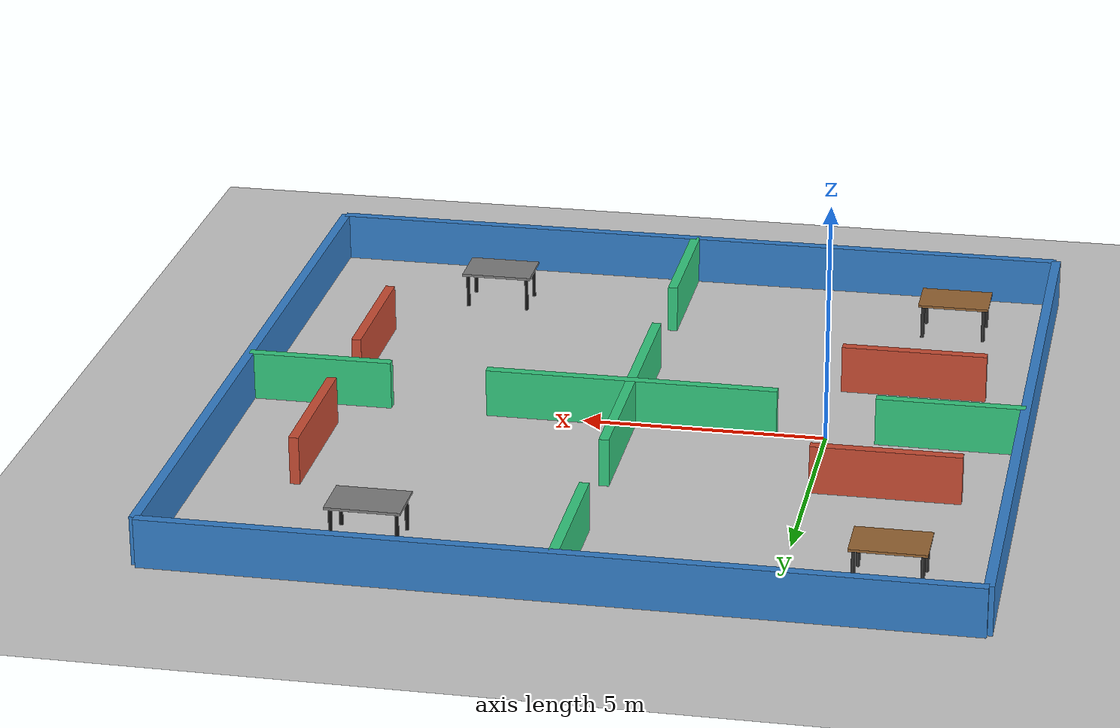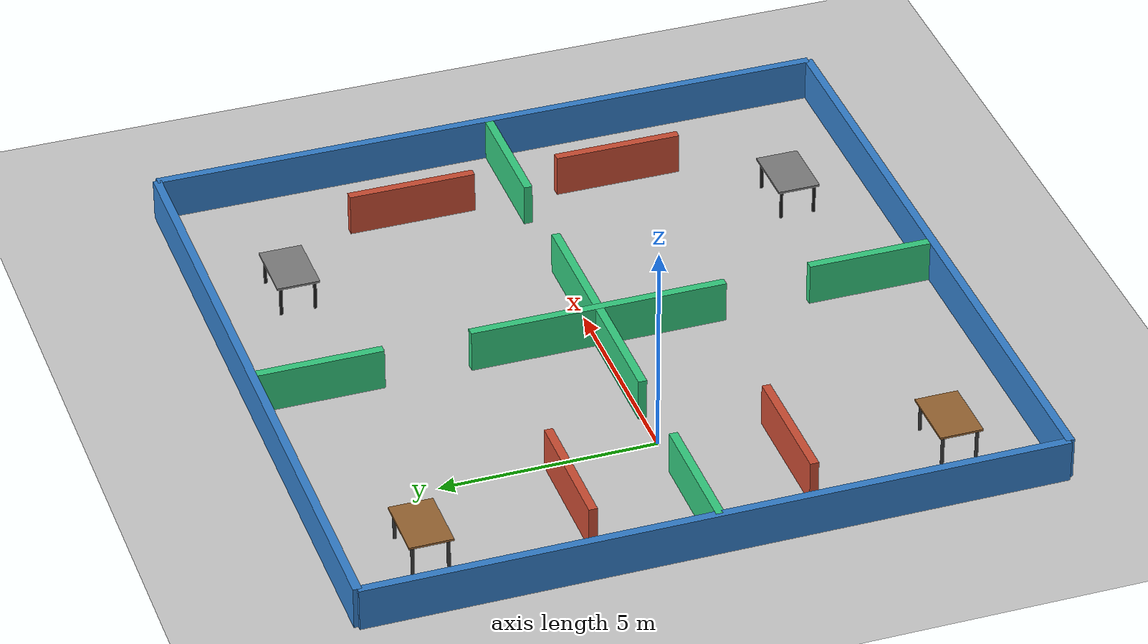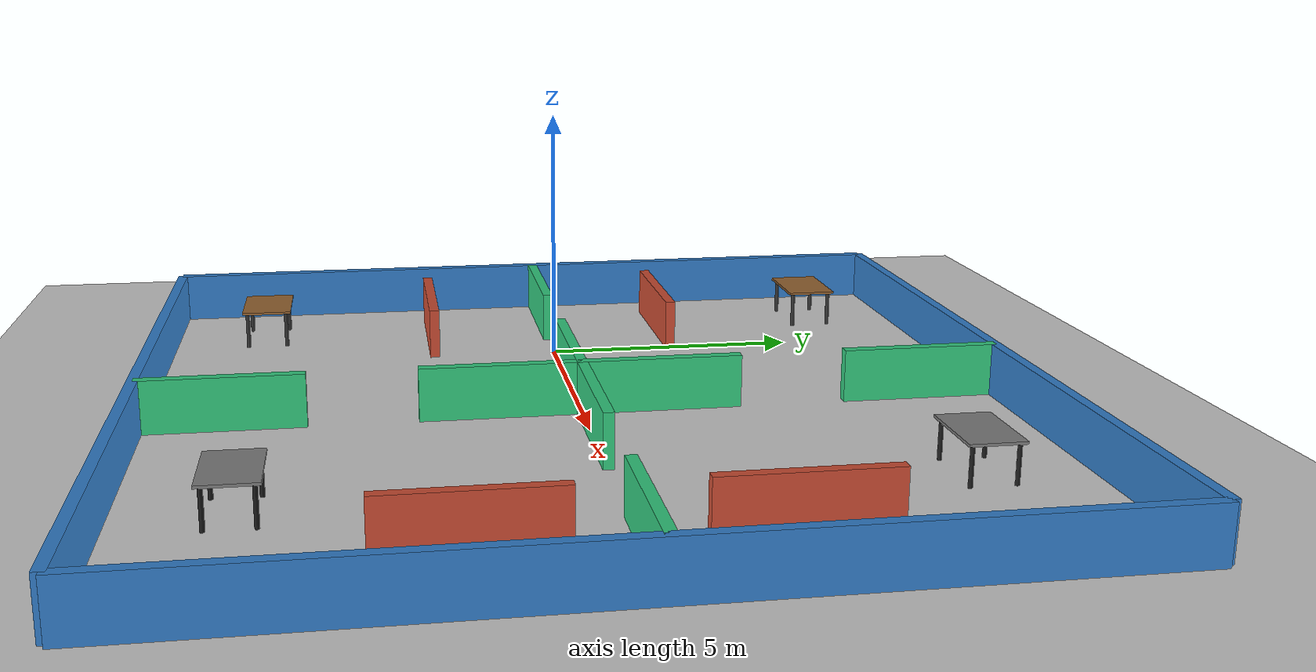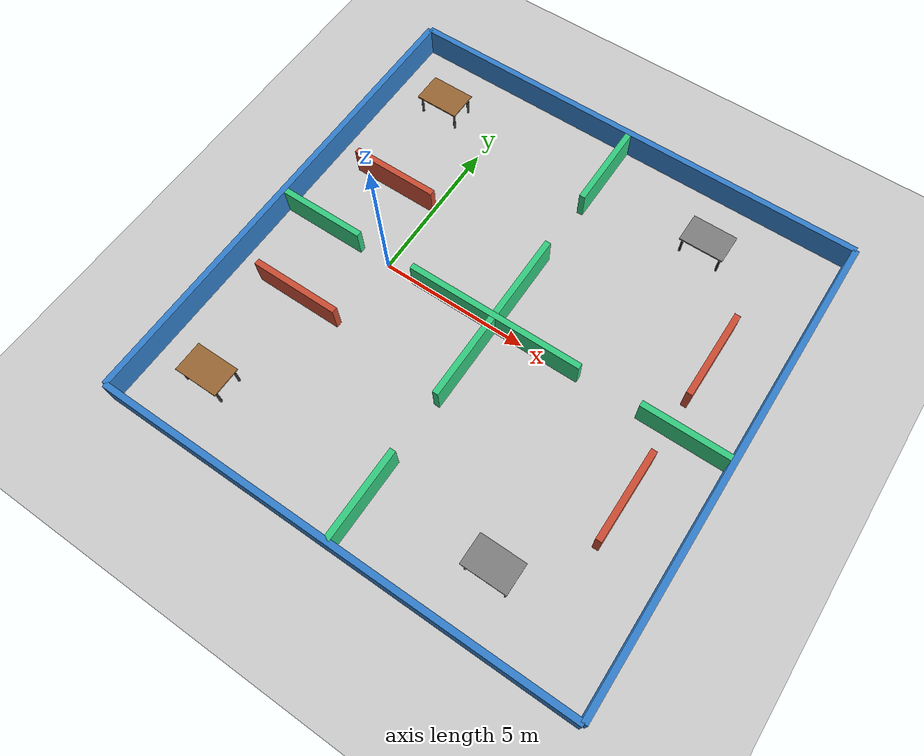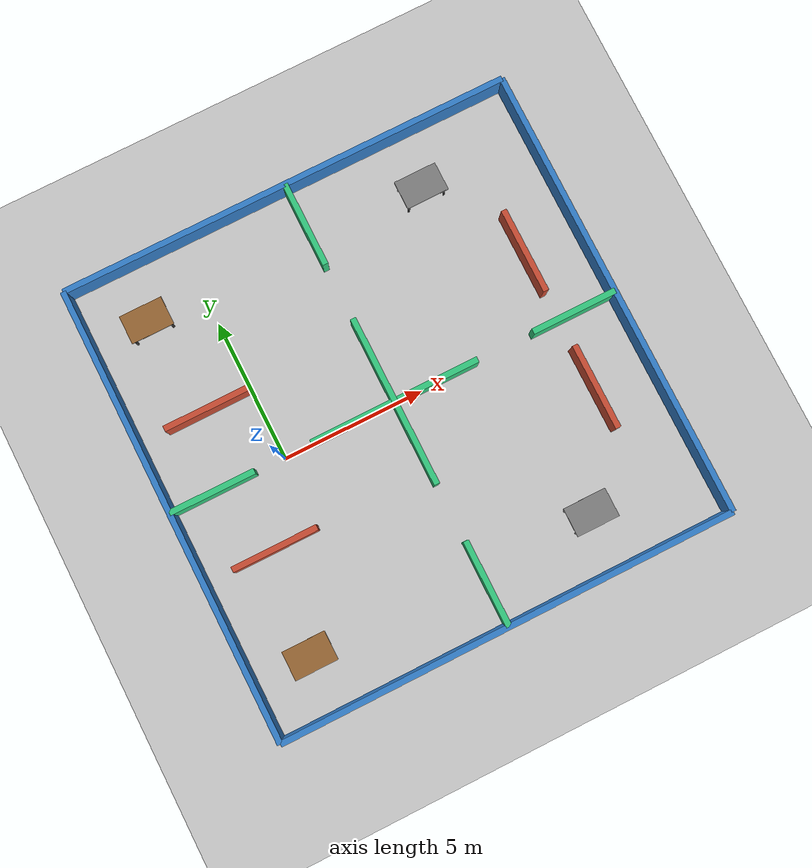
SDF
<?xml version='1.0' encoding='utf-8'?>
<sdf version='1.9'>
  <world name='four_rooms_world'>

    <physics name='1ms' type='ignored'>
      <max_step_size>0.001</max_step_size>
      <real_time_factor>1</real_time_factor>
      <real_time_update_rate>1000</real_time_update_rate>
    </physics>
    <plugin name='gz::sim::systems::Physics' filename='ignition-gazebo-physics-system'/>
    <plugin name='gz::sim::systems::UserCommands' filename='ignition-gazebo-user-commands-system'/>
    <plugin name='gz::sim::systems::SceneBroadcaster' filename='ignition-gazebo-scene-broadcaster-system'/>
    <plugin name='gz::sim::systems::Contact' filename='ignition-gazebo-contact-system'/>
    <gravity>0 0 -9.8</gravity>
    <magnetic_field>6e-06 2.3e-05 -4.2e-05</magnetic_field>
    <atmosphere type='adiabatic'/>

    <scene>
      <ambient>0.4 0.4 0.4 1</ambient>
      <background>0.7 0.7 0.7 1</background>
      <shadows>true</shadows>
    </scene>

    <light name='sun' type='directional'>
      <pose>4 0 10 0 0 0</pose>
      <cast_shadows>true</cast_shadows>
      <intensity>1</intensity>
      <direction>-0.5 0.1 -0.9</direction>
      <diffuse>0.8 0.8 0.8 1</diffuse>
      <specular>0.2 0.2 0.2 1</specular>
      <attenuation>
        <range>1000</range>
        <linear>0.01</linear>
        <constant>0.9</constant>
        <quadratic>0.001</quadratic>
      </attenuation>
    </light>

    <model name='ground_plane'>
      <static>true</static>
      <link name='link'>
        <collision name='collision'>
          <geometry><plane><normal>0 0 1</normal><size>100 100</size></plane></geometry>
        </collision>
        <visual name='visual'>
          <geometry><plane><normal>0 0 1</normal><size>100 100</size></plane></geometry>
          <material>
            <ambient>0.8 0.8 0.8 1</ambient>
            <diffuse>0.8 0.8 0.8 1</diffuse>
            <specular>0.8 0.8 0.8 1</specular>
          </material>
        </visual>
      </link>
    </model>

    <model name='four_rooms'>
      <static>true</static>
      <pose>0 0 0 0 0 0</pose>
      <link name='maze_walls'>

        <collision name='wall_n_col'><pose>4 8 0.5 0 0 0</pose><geometry><box><size>16 0.2 1</size></box></geometry></collision>
        <visual name='wall_n_vis'><pose>4 8 0.5 0 0 0</pose><geometry><box><size>16 0.2 1</size></box></geometry><material><ambient>0.2 0.5 0.8 1</ambient><diffuse>0.2 0.5 0.8 1</diffuse></material></visual>

        <collision name='wall_s_col'><pose>4 -8 0.5 0 0 0</pose><geometry><box><size>16 0.2 1</size></box></geometry></collision>
        <visual name='wall_s_vis'><pose>4 -8 0.5 0 0 0</pose><geometry><box><size>16 0.2 1</size></box></geometry><material><ambient>0.2 0.5 0.8 1</ambient><diffuse>0.2 0.5 0.8 1</diffuse></material></visual>

        <collision name='wall_w_col'><pose>-4 0 0.5 0 0 0</pose><geometry><box><size>0.2 16 1</size></box></geometry></collision>
        <visual name='wall_w_vis'><pose>-4 0 0.5 0 0 0</pose><geometry><box><size>0.2 16 1</size></box></geometry><material><ambient>0.2 0.5 0.8 1</ambient><diffuse>0.2 0.5 0.8 1</diffuse></material></visual>

        <collision name='wall_e_col'><pose>12 0 0.5 0 0 0</pose><geometry><box><size>0.2 16 1</size></box></geometry></collision>
        <visual name='wall_e_vis'><pose>12 0 0.5 0 0 0</pose><geometry><box><size>0.2 16 1</size></box></geometry><material><ambient>0.2 0.5 0.8 1</ambient><diffuse>0.2 0.5 0.8 1</diffuse></material></visual>

        <collision name='wall_v1_col'><pose>4 6.5 0.5 0 0 0</pose><geometry><box><size>0.2 3 1</size></box></geometry></collision>
        <visual name='wall_v1_vis'><pose>4 6.5 0.5 0 0 0</pose><geometry><box><size>0.2 3 1</size></box></geometry><material><ambient>0.2 0.8 0.5 1</ambient><diffuse>0.2 0.8 0.5 1</diffuse></material></visual>

        <collision name='wall_v2_col'><pose>4 0 0.5 0 0 0</pose><geometry><box><size>0.2 6 1</size></box></geometry></collision>
        <visual name='wall_v2_vis'><pose>4 0 0.5 0 0 0</pose><geometry><box><size>0.2 6 1</size></box></geometry><material><ambient>0.2 0.8 0.5 1</ambient><diffuse>0.2 0.8 0.5 1</diffuse></material></visual>

        <collision name='wall_v3_col'><pose>4 -6.5 0.5 0 0 0</pose><geometry><box><size>0.2 3 1</size></box></geometry></collision>
        <visual name='wall_v3_vis'><pose>4 -6.5 0.5 0 0 0</pose><geometry><box><size>0.2 3 1</size></box></geometry><material><ambient>0.2 0.8 0.5 1</ambient><diffuse>0.2 0.8 0.5 1</diffuse></material></visual>

        <collision name='wall_h1_col'><pose>-2.5 0 0.5 0 0 0</pose><geometry><box><size>3 0.2 1</size></box></geometry></collision>
        <visual name='wall_h1_vis'><pose>-2.5 0 0.5 0 0 0</pose><geometry><box><size>3 0.2 1</size></box></geometry><material><ambient>0.2 0.8 0.5 1</ambient><diffuse>0.2 0.8 0.5 1</diffuse></material></visual>

        <collision name='wall_h2_col'><pose>4 0 0.5 0 0 0</pose><geometry><box><size>6 0.2 1</size></box></geometry></collision>
        <visual name='wall_h2_vis'><pose>4 0 0.5 0 0 0</pose><geometry><box><size>6 0.2 1</size></box></geometry><material><ambient>0.2 0.8 0.5 1</ambient><diffuse>0.2 0.8 0.5 1</diffuse></material></visual>

        <collision name='wall_h3_col'><pose>10.5 0 0.5 0 0 0</pose><geometry><box><size>3 0.2 1</size></box></geometry></collision>
        <visual name='wall_h3_vis'><pose>10.5 0 0.5 0 0 0</pose><geometry><box><size>3 0.2 1</size></box></geometry><material><ambient>0.2 0.8 0.5 1</ambient><diffuse>0.2 0.8 0.5 1</diffuse></material></visual>

        <collision name='obs_1_col'><pose>-1.5 2.5 0.5 0 0 0</pose><geometry><box><size>3 0.2 1</size></box></geometry></collision>
        <visual name='obs_1_vis'><pose>-1.5 2.5 0.5 0 0 0</pose><geometry><box><size>3 0.2 1</size></box></geometry><material><ambient>0.8 0.3 0.2 1</ambient><diffuse>0.8 0.3 0.2 1</diffuse></material></visual>

        <collision name='obs_2_col'><pose>10 2.5 0.5 0 0 0</pose><geometry><box><size>0.2 3 1</size></box></geometry></collision>
        <visual name='obs_2_vis'><pose>10 2.5 0.5 0 0 0</pose><geometry><box><size>0.2 3 1</size></box></geometry><material><ambient>0.8 0.3 0.2 1</ambient><diffuse>0.8 0.3 0.2 1</diffuse></material></visual>

        <collision name='obs_3_col'><pose>-1.5 -2.5 0.5 0 0 0</pose><geometry><box><size>3 0.2 1</size></box></geometry></collision>
        <visual name='obs_3_vis'><pose>-1.5 -2.5 0.5 0 0 0</pose><geometry><box><size>3 0.2 1</size></box></geometry><material><ambient>0.8 0.3 0.2 1</ambient><diffuse>0.8 0.3 0.2 1</diffuse></material></visual>

        <collision name='obs_4_col'><pose>10 -2.5 0.5 0 0 0</pose><geometry><box><size>0.2 3 1</size></box></geometry></collision>
        <visual name='obs_4_vis'><pose>10 -2.5 0.5 0 0 0</pose><geometry><box><size>0.2 3 1</size></box></geometry><material><ambient>0.8 0.3 0.2 1</ambient><diffuse>0.8 0.3 0.2 1</diffuse></material></visual>

      </link>
    </model>

    <model name='table_1'>
      <static>true</static><pose>-2 6 0 0 0 0</pose>
      <link name='table_parts'>
        <collision name='top'><pose>0 0 0.75 0 0 0</pose><geometry><box><size>1.5 1.0 0.05</size></box></geometry></collision>
        <visual name='top'><pose>0 0 0.75 0 0 0</pose><geometry><box><size>1.5 1.0 0.05</size></box></geometry><material><ambient>0.6 0.4 0.2 1</ambient></material></visual>
        <visual name='l1'><pose>0.65 0.4 0.375 0 0 0</pose><geometry><cylinder><radius>0.04</radius><length>0.75</length></cylinder></geometry><material><ambient>0.2 0.2 0.2 1</ambient></material></visual>
        <visual name='l2'><pose>-0.65 0.4 0.375 0 0 0</pose><geometry><cylinder><radius>0.04</radius><length>0.75</length></cylinder></geometry><material><ambient>0.2 0.2 0.2 1</ambient></material></visual>
        <visual name='l3'><pose>0.65 -0.4 0.375 0 0 0</pose><geometry><cylinder><radius>0.04</radius><length>0.75</length></cylinder></geometry><material><ambient>0.2 0.2 0.2 1</ambient></material></visual>
        <visual name='l4'><pose>-0.65 -0.4 0.375 0 0 0</pose><geometry><cylinder><radius>0.04</radius><length>0.75</length></cylinder></geometry><material><ambient>0.2 0.2 0.2 1</ambient></material></visual>
      </link>
    </model>

    <model name='table_2'>
      <static>true</static><pose>8 6 0 0 0 0</pose>
      <link name='table_parts'>
        <collision name='top'><pose>0 0 0.75 0 0 0</pose><geometry><box><size>1.5 1.0 0.05</size></box></geometry></collision>
        <visual name='top'><pose>0 0 0.75 0 0 0</pose><geometry><box><size>1.5 1.0 0.05</size></box></geometry><material><ambient>0.5 0.5 0.5 1</ambient></material></visual>
        <visual name='l1'><pose>0.65 0.4 0.375 0 0 0</pose><geometry><cylinder><radius>0.04</radius><length>0.75</length></cylinder></geometry><material><ambient>0.1 0.1 0.1 1</ambient></material></visual>
        <visual name='l2'><pose>-0.65 0.4 0.375 0 0 0</pose><geometry><cylinder><radius>0.04</radius><length>0.75</length></cylinder></geometry><material><ambient>0.1 0.1 0.1 1</ambient></material></visual>
        <visual name='l3'><pose>0.65 -0.4 0.375 0 0 0</pose><geometry><cylinder><radius>0.04</radius><length>0.75</length></cylinder></geometry><material><ambient>0.1 0.1 0.1 1</ambient></material></visual>
        <visual name='l4'><pose>-0.65 -0.4 0.375 0 0 0</pose><geometry><cylinder><radius>0.04</radius><length>0.75</length></cylinder></geometry><material><ambient>0.1 0.1 0.1 1</ambient></material></visual>
      </link>
    </model>

    <model name='table_3'>
      <static>true</static><pose>-2 -6 0 0 0 0</pose>
      <link name='table_parts'>
        <collision name='top'><pose>0 0 0.75 0 0 0</pose><geometry><box><size>1.5 1.0 0.05</size></box></geometry></collision>
        <visual name='top'><pose>0 0 0.75 0 0 0</pose><geometry><box><size>1.5 1.0 0.05</size></box></geometry><material><ambient>0.6 0.4 0.2 1</ambient></material></visual>
        <visual name='l1'><pose>0.65 0.4 0.375 0 0 0</pose><geometry><cylinder><radius>0.04</radius><length>0.75</length></cylinder></geometry><material><ambient>0.2 0.2 0.2 1</ambient></material></visual>
        <visual name='l2'><pose>-0.65 0.4 0.375 0 0 0</pose><geometry><cylinder><radius>0.04</radius><length>0.75</length></cylinder></geometry><material><ambient>0.2 0.2 0.2 1</ambient></material></visual>
        <visual name='l3'><pose>0.65 -0.4 0.375 0 0 0</pose><geometry><cylinder><radius>0.04</radius><length>0.75</length></cylinder></geometry><material><ambient>0.2 0.2 0.2 1</ambient></material></visual>
        <visual name='l4'><pose>-0.65 -0.4 0.375 0 0 0</pose><geometry><cylinder><radius>0.04</radius><length>0.75</length></cylinder></geometry><material><ambient>0.2 0.2 0.2 1</ambient></material></visual>
      </link>
    </model>

    <model name='table_4'>
      <static>true</static><pose>8 -6 0 0 0 0</pose>
      <link name='table_parts'>
        <collision name='top'><pose>0 0 0.75 0 0 0</pose><geometry><box><size>1.5 1.0 0.05</size></box></geometry></collision>
        <visual name='top'><pose>0 0 0.75 0 0 0</pose><geometry><box><size>1.5 1.0 0.05</size></box></geometry><material><ambient>0.5 0.5 0.5 1</ambient></material></visual>
        <visual name='l1'><pose>0.65 0.4 0.375 0 0 0</pose><geometry><cylinder><radius>0.04</radius><length>0.75</length></cylinder></geometry><material><ambient>0.1 0.1 0.1 1</ambient></material></visual>
        <visual name='l2'><pose>-0.65 0.4 0.375 0 0 0</pose><geometry><cylinder><radius>0.04</radius><length>0.75</length></cylinder></geometry><material><ambient>0.1 0.1 0.1 1</ambient></material></visual>
        <visual name='l3'><pose>0.65 -0.4 0.375 0 0 0</pose><geometry><cylinder><radius>0.04</radius><length>0.75</length></cylinder></geometry><material><ambient>0.1 0.1 0.1 1</ambient></material></visual>
        <visual name='l4'><pose>-0.65 -0.4 0.375 0 0 0</pose><geometry><cylinder><radius>0.04</radius><length>0.75</length></cylinder></geometry><material><ambient>0.1 0.1 0.1 1</ambient></material></visual>
      </link>
    </model>

  </world>
</sdf>
